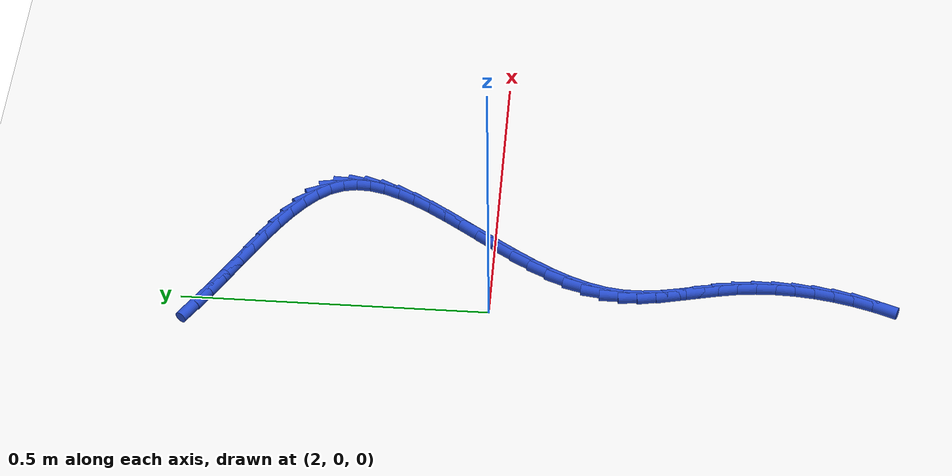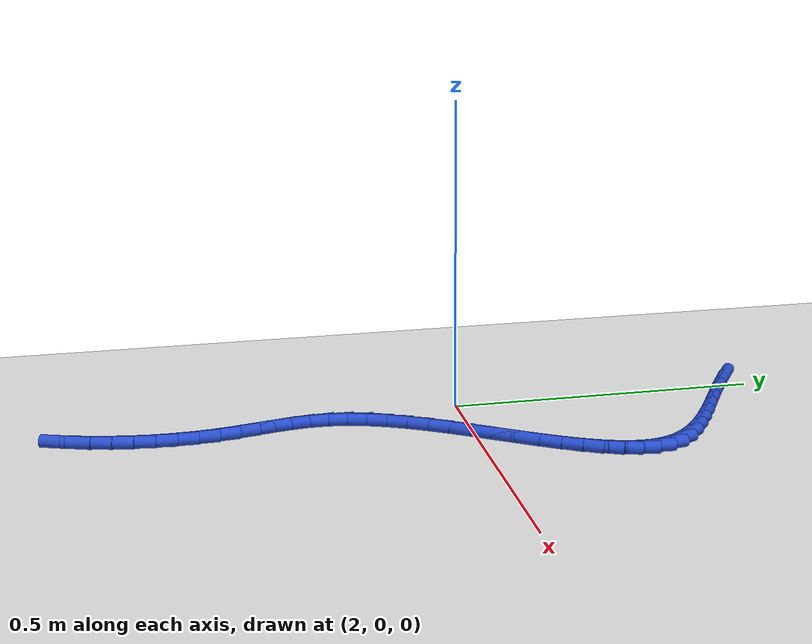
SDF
<sdf version="1.6">
 <world name="default">
  <model name="ground_plane">
   <static>1</static>
   <link name="link">
    <collision name="collision">
     <geometry><plane><normal>0 0 1</normal><size>100 100</size></plane></geometry>
     <surface><friction><ode><mu>100</mu><mu2>50</mu2></ode></friction></surface>
    </collision>
    <visual name="visual">
     <cast_shadows>0</cast_shadows>
     <geometry><plane><normal>0 0 1</normal><size>100 100</size></plane></geometry>
     <material>
      <script><uri>file://media/materials/scripts/gazebo.material</uri><name>Gazebo/WhiteGlow</name></script>
     </material>
    </visual>
   </link>
  </model>
  <model name="line">
   <link name="link_103">
    <pose>1.981913465674642 0.47085074446422454 0.01 0 1.57 -0.5699047802693901</pose>
    <collision name="collision">
     <geometry><cylinder><radius>0.01</radius><length>0.08</length></cylinder></geometry>
    </collision>
    <visual name="visual">
     <material>
      <script><name>Gazebo/Blue</name><uri>file://media/materials/scripts/gazebo.material</uri></script>
     </material>
     <geometry><cylinder><radius>0.01</radius><length>0.08</length></cylinder></geometry>
    </visual>
   </link>
   <link name="link_104">
    <pose>2.010251713594959 0.45269062546092215 0.01 0 1.57 -0.5445728263517903</pose>
    <collision name="collision">
     <geometry><cylinder><radius>0.01</radius><length>0.08</length></cylinder></geometry>
    </collision>
    <visual name="visual">
     <material>
      <script><name>Gazebo/Blue</name><uri>file://media/materials/scripts/gazebo.material</uri></script>
     </material>
     <geometry><cylinder><radius>0.01</radius><length>0.08</length></cylinder></geometry>
    </visual>
   </link>
   <link name="link_105">
    <pose>2.039590934486966 0.434920954676809 0.01 0 1.57 -0.5301406396188105</pose>
    <collision name="collision">
     <geometry><cylinder><radius>0.01</radius><length>0.08</length></cylinder></geometry>
    </collision>
    <visual name="visual">
     <material>
      <script><name>Gazebo/Blue</name><uri>file://media/materials/scripts/gazebo.material</uri></script>
     </material>
     <geometry><cylinder><radius>0.01</radius><length>0.08</length></cylinder></geometry>
    </visual>
   </link>
   <link name="link_106">
    <pose>2.0696098026925442 0.41732671743350236 0.01 0 1.57 -0.5267003974403813</pose>
    <collision name="collision">
     <geometry><cylinder><radius>0.01</radius><length>0.08</length></cylinder></geometry>
    </collision>
    <visual name="visual">
     <material>
      <script><name>Gazebo/Blue</name><uri>file://media/materials/scripts/gazebo.material</uri></script>
     </material>
     <geometry><cylinder><radius>0.01</radius><length>0.08</length></cylinder></geometry>
    </visual>
   </link>
   <link name="link_107">
    <pose>2.0999188131341695 0.3997022340509509 0.01 0 1.57 -0.5377876126190331</pose>
    <collision name="collision">
     <geometry><cylinder><radius>0.01</radius><length>0.08</length></cylinder></geometry>
    </collision>
    <visual name="visual">
     <material>
      <script><name>Gazebo/Blue</name><uri>file://media/materials/scripts/gazebo.material</uri></script>
     </material>
     <geometry><cylinder><radius>0.01</radius><length>0.08</length></cylinder></geometry>
    </visual>
   </link>
   <link name="link_108">
    <pose>2.129785881011208 0.3818887302227648 0.01 0 1.57 -0.5656257648243175</pose>
    <collision name="collision">
     <geometry><cylinder><radius>0.01</radius><length>0.08</length></cylinder></geometry>
    </collision>
    <visual name="visual">
     <material>
      <script><name>Gazebo/Blue</name><uri>file://media/materials/scripts/gazebo.material</uri></script>
     </material>
     <geometry><cylinder><radius>0.01</radius><length>0.08</length></cylinder></geometry>
    </visual>
   </link>
   <link name="link_109">
    <pose>2.1583715553144747 0.3637421320226151 0.01 0 1.57 -0.6132171819817294</pose>
    <collision name="collision">
     <geometry><cylinder><radius>0.01</radius><length>0.08</length></cylinder></geometry>
    </collision>
    <visual name="visual">
     <material>
      <script><name>Gazebo/Blue</name><uri>file://media/materials/scripts/gazebo.material</uri></script>
     </material>
     <geometry><cylinder><radius>0.01</radius><length>0.08</length></cylinder></geometry>
    </visual>
   </link>
   <link name="link_110">
    <pose>2.1848363474656693 0.3451183706680651 0.01 0 1.57 -0.6860888209851176</pose>
    <collision name="collision">
     <geometry><cylinder><radius>0.01</radius><length>0.08</length></cylinder></geometry>
    </collision>
    <visual name="visual">
     <material>
      <script><name>Gazebo/Blue</name><uri>file://media/materials/scripts/gazebo.material</uri></script>
     </material>
     <geometry><cylinder><radius>0.01</radius><length>0.08</length></cylinder></geometry>
    </visual>
   </link>
   <link name="link_111">
    <pose>2.2083407688864938 0.32587337737667826 0.01 0 1.57 -0.7930961859801333</pose>
    <collision name="collision">
     <geometry><cylinder><radius>0.01</radius><length>0.08</length></cylinder></geometry>
    </collision>
    <visual name="visual">
     <material>
      <script><name>Gazebo/Blue</name><uri>file://media/materials/scripts/gazebo.material</uri></script>
     </material>
     <geometry><cylinder><radius>0.01</radius><length>0.08</length></cylinder></geometry>
    </visual>
   </link>
   <link name="link_112">
    <pose>2.22804533099865 0.30586308336601814 0.01 0 1.57 -0.9466770565785255</pose>
    <collision name="collision">
     <geometry><cylinder><radius>0.01</radius><length>0.08</length></cylinder></geometry>
    </collision>
    <visual name="visual">
     <material>
      <script><name>Gazebo/Blue</name><uri>file://media/materials/scripts/gazebo.material</uri></script>
     </material>
     <geometry><cylinder><radius>0.01</radius><length>0.08</length></cylinder></geometry>
    </visual>
   </link>
   <link name="link_113">
    <pose>2.2431105452238382 0.284943419853648 0.01 0 1.57 -1.1587241691534014</pose>
    <collision name="collision">
     <geometry><cylinder><radius>0.01</radius><length>0.08</length></cylinder></geometry>
    </collision>
    <visual name="visual">
     <material>
      <script><name>Gazebo/Blue</name><uri>file://media/materials/scripts/gazebo.material</uri></script>
     </material>
     <geometry><cylinder><radius>0.01</radius><length>0.08</length></cylinder></geometry>
    </visual>
   </link>
   <link name="link_114">
    <pose>2.2527137906373436 0.2629729079486041 0.01 0 1.57 -1.4019546736167359</pose>
    <collision name="collision">
     <geometry><cylinder><radius>0.01</radius><length>0.08</length></cylinder></geometry>
    </collision>
    <visual name="visual">
     <material>
      <script><name>Gazebo/Blue</name><uri>file://media/materials/scripts/gazebo.material</uri></script>
     </material>
     <geometry><cylinder><radius>0.01</radius><length>0.08</length></cylinder></geometry>
    </visual>
   </link>
   <link name="link_115">
    <pose>2.2566461709952774 0.23990430120960435 0.01 0 1.57 1.5221272723762889</pose>
    <collision name="collision">
     <geometry><cylinder><radius>0.01</radius><length>0.08</length></cylinder></geometry>
    </collision>
    <visual name="visual">
     <material>
      <script><name>Gazebo/Blue</name><uri>file://media/materials/scripts/gazebo.material</uri></script>
     </material>
     <geometry><cylinder><radius>0.01</radius><length>0.08</length></cylinder></geometry>
    </visual>
   </link>
   <link name="link_116">
    <pose>2.2554725564112865 0.21580915874715484 0.01 0 1.57 1.3483132950115322</pose>
    <collision name="collision">
     <geometry><cylinder><radius>0.01</radius><length>0.08</length></cylinder></geometry>
    </collision>
    <visual name="visual">
     <material>
      <script><name>Gazebo/Blue</name><uri>file://media/materials/scripts/gazebo.material</uri></script>
     </material>
     <geometry><cylinder><radius>0.01</radius><length>0.08</length></cylinder></geometry>
    </visual>
   </link>
   <link name="link_117">
    <pose>2.2498072327305594 0.19076662705675954 0.01 0 1.57 1.2179190292926807</pose>
    <collision name="collision">
     <geometry><cylinder><radius>0.01</radius><length>0.08</length></cylinder></geometry>
    </collision>
    <visual name="visual">
     <material>
      <script><name>Gazebo/Blue</name><uri>file://media/materials/scripts/gazebo.material</uri></script>
     </material>
     <geometry><cylinder><radius>0.01</radius><length>0.08</length></cylinder></geometry>
    </visual>
   </link>
   <link name="link_118">
    <pose>2.2402644857982863 0.16485585263392236 0.01 0 1.57 1.1235824274150594</pose>
    <collision name="collision">
     <geometry><cylinder><radius>0.01</radius><length>0.08</length></cylinder></geometry>
    </collision>
    <visual name="visual">
     <material>
      <script><name>Gazebo/Blue</name><uri>file://media/materials/scripts/gazebo.material</uri></script>
     </material>
     <geometry><cylinder><radius>0.01</radius><length>0.08</length></cylinder></geometry>
    </visual>
   </link>
   <link name="link_119">
    <pose>2.2274586014596567 0.13815598197414725 0.01 0 1.57 1.0573900036119586</pose>
    <collision name="collision">
     <geometry><cylinder><radius>0.01</radius><length>0.08</length></cylinder></geometry>
    </collision>
    <visual name="visual">
     <material>
      <script><name>Gazebo/Blue</name><uri>file://media/materials/scripts/gazebo.material</uri></script>
     </material>
     <geometry><cylinder><radius>0.01</radius><length>0.08</length></cylinder></geometry>
    </visual>
   </link>
   <link name="link_120">
    <pose>2.2120038655598595 0.11074616157293851 0.01 0 1.57 1.0131230269130178</pose>
    <collision name="collision">
     <geometry><cylinder><radius>0.01</radius><length>0.08</length></cylinder></geometry>
    </collision>
    <visual name="visual">
     <material>
      <script><name>Gazebo/Blue</name><uri>file://media/materials/scripts/gazebo.material</uri></script>
     </material>
     <geometry><cylinder><radius>0.01</radius><length>0.08</length></cylinder></geometry>
    </visual>
   </link>
   <link name="link_121">
    <pose>2.194514563944084 0.08270553792579931 0.01 0 1.57 0.9864816601835548</pose>
    <collision name="collision">
     <geometry><cylinder><radius>0.01</radius><length>0.08</length></cylinder></geometry>
    </collision>
    <visual name="visual">
     <material>
      <script><name>Gazebo/Blue</name><uri>file://media/materials/scripts/gazebo.material</uri></script>
     </material>
     <geometry><cylinder><radius>0.01</radius><length>0.08</length></cylinder></geometry>
    </visual>
   </link>
   <link name="link_122">
    <pose>2.175604982457519 0.05411325752823394 0.01 0 1.57 0.9747611929047348</pose>
    <collision name="collision">
     <geometry><cylinder><radius>0.01</radius><length>0.08</length></cylinder></geometry>
    </collision>
    <visual name="visual">
     <material>
      <script><name>Gazebo/Blue</name><uri>file://media/materials/scripts/gazebo.material</uri></script>
     </material>
     <geometry><cylinder><radius>0.01</radius><length>0.08</length></cylinder></geometry>
    </visual>
   </link>
   <link name="link_123">
    <pose>2.1558894069453545 0.02504846687574635 0.01 0 1.57 0.9765097873525114</pose>
    <collision name="collision">
     <geometry><cylinder><radius>0.01</radius><length>0.08</length></cylinder></geometry>
    </collision>
    <visual name="visual">
     <material>
      <script><name>Gazebo/Blue</name><uri>file://media/materials/scripts/gazebo.material</uri></script>
     </material>
     <geometry><cylinder><radius>0.01</radius><length>0.08</length></cylinder></geometry>
    </visual>
   </link>
   <link name="link_124">
    <pose>2.13598212325278 -0.004409687536159515 0.01 0 1.57 0.9912949978484613</pose>
    <collision name="collision">
     <geometry><cylinder><radius>0.01</radius><length>0.08</length></cylinder></geometry>
    </collision>
    <visual name="visual">
     <material>
      <script><name>Gazebo/Blue</name><uri>file://media/materials/scripts/gazebo.material</uri></script>
     </material>
     <geometry><cylinder><radius>0.01</radius><length>0.08</length></cylinder></geometry>
    </visual>
   </link>
   <link name="link_125">
    <pose>2.1164974172249846 -0.03418205921197976 0.01 0 1.57 1.0195832186732838</pose>
    <collision name="collision">
     <geometry><cylinder><radius>0.01</radius><length>0.08</length></cylinder></geometry>
    </collision>
    <visual name="visual">
     <material>
      <script><name>Gazebo/Blue</name><uri>file://media/materials/scripts/gazebo.material</uri></script>
     </material>
     <geometry><cylinder><radius>0.01</radius><length>0.08</length></cylinder></geometry>
    </visual>
   </link>
   <link name="link_126">
    <pose>2.098049574707156 -0.06418950165621043 0.01 0 1.57 1.0627035868776613</pose>
    <collision name="collision">
     <geometry><cylinder><radius>0.01</radius><length>0.08</length></cylinder></geometry>
    </collision>
    <visual name="visual">
     <material>
      <script><name>Gazebo/Blue</name><uri>file://media/materials/scripts/gazebo.material</uri></script>
     </material>
     <geometry><cylinder><radius>0.01</radius><length>0.08</length></cylinder></geometry>
    </visual>
   </link>
   <link name="link_127">
    <pose>2.0812528815444877 -0.09435286837334765 0.01 0 1.57 1.1228467254052958</pose>
    <collision name="collision">
     <geometry><cylinder><radius>0.01</radius><length>0.08</length></cylinder></geometry>
    </collision>
    <visual name="visual">
     <material>
      <script><name>Gazebo/Blue</name><uri>file://media/materials/scripts/gazebo.material</uri></script>
     </material>
     <geometry><cylinder><radius>0.01</radius><length>0.08</length></cylinder></geometry>
    </visual>
   </link>
   <link name="link_128">
    <pose>2.0667216235821644 -0.1245930128678874 0.01 0 1.57 1.2029996907922589</pose>
    <collision name="collision">
     <geometry><cylinder><radius>0.01</radius><length>0.08</length></cylinder></geometry>
    </collision>
    <visual name="visual">
     <material>
      <script><name>Gazebo/Blue</name><uri>file://media/materials/scripts/gazebo.material</uri></script>
     </material>
     <geometry><cylinder><radius>0.01</radius><length>0.08</length></cylinder></geometry>
    </visual>
   </link>
   <link name="link_129">
    <pose>2.0550700866653777 -0.1548307886443258 0.01 0 1.57 1.3066104427403022</pose>
    <collision name="collision">
     <geometry><cylinder><radius>0.01</radius><length>0.08</length></cylinder></geometry>
    </collision>
    <visual name="visual">
     <material>
      <script><name>Gazebo/Blue</name><uri>file://media/materials/scripts/gazebo.material</uri></script>
     </material>
     <geometry><cylinder><radius>0.01</radius><length>0.08</length></cylinder></geometry>
    </visual>
   </link>
   <link name="link_130">
    <pose>2.0469125566393163 -0.184987049207159 0.01 0 1.57 1.4364834005660203</pose>
    <collision name="collision">
     <geometry><cylinder><radius>0.01</radius><length>0.08</length></cylinder></geometry>
    </collision>
    <visual name="visual">
     <material>
      <script><name>Gazebo/Blue</name><uri>file://media/materials/scripts/gazebo.material</uri></script>
     </material>
     <geometry><cylinder><radius>0.01</radius><length>0.08</length></cylinder></geometry>
    </visual>
   </link>
   <link name="link_131">
    <pose>2.0428592908488787 -0.21498314081734582 0.01 0 1.57 -1.5662880877214558</pose>
    <collision name="collision">
     <geometry><cylinder><radius>0.01</radius><length>0.08</length></cylinder></geometry>
    </collision>
    <visual name="visual">
     <material>
      <script><name>Gazebo/Blue</name><uri>file://media/materials/scripts/gazebo.material</uri></script>
     </material>
     <geometry><cylinder><radius>0.01</radius><length>0.08</length></cylinder></geometry>
    </visual>
   </link>
   <link name="link_132">
    <pose>2.042993735145489 -0.2448048480502026 0.01 0 1.57 -1.458353848641291</pose>
    <collision name="collision">
     <geometry><cylinder><radius>0.01</radius><length>0.08</length></cylinder></geometry>
    </collision>
    <visual name="visual">
     <material>
      <script><name>Gazebo/Blue</name><uri>file://media/materials/scripts/gazebo.material</uri></script>
     </material>
     <geometry><cylinder><radius>0.01</radius><length>0.08</length></cylinder></geometry>
    </visual>
   </link>
   <link name="link_133">
    <pose>2.0463543030880196 -0.27456578131669085 0.01 0 1.57 -1.3883965175967687</pose>
    <collision name="collision">
     <geometry><cylinder><radius>0.01</radius><length>0.08</length></cylinder></geometry>
    </collision>
    <visual name="visual">
     <material>
      <script><name>Gazebo/Blue</name><uri>file://media/materials/scripts/gazebo.material</uri></script>
     </material>
     <geometry><cylinder><radius>0.01</radius><length>0.08</length></cylinder></geometry>
    </visual>
   </link>
   <link name="link_134">
    <pose>2.0518562287656588 -0.30439461804413015 0.01 0 1.57 -1.3557419510926974</pose>
    <collision name="collision">
     <geometry><cylinder><radius>0.01</radius><length>0.08</length></cylinder></geometry>
    </collision>
    <visual name="visual">
     <material>
      <script><name>Gazebo/Blue</name><uri>file://media/materials/scripts/gazebo.material</uri></script>
     </material>
     <geometry><cylinder><radius>0.01</radius><length>0.08</length></cylinder></geometry>
    </visual>
   </link>
   <link name="link_135">
    <pose>2.058414746267597 -0.33442003565984 0.01 0 1.57 -1.358864344481079</pose>
    <collision name="collision">
     <geometry><cylinder><radius>0.01</radius><length>0.08</length></cylinder></geometry>
    </collision>
    <visual name="visual">
     <material>
      <script><name>Gazebo/Blue</name><uri>file://media/materials/scripts/gazebo.material</uri></script>
     </material>
     <geometry><cylinder><radius>0.01</radius><length>0.08</length></cylinder></geometry>
    </visual>
   </link>
   <link name="link_136">
    <pose>2.0649450896830235 -0.3647707115911403 0.01 0 1.57 -1.3967130495350932</pose>
    <collision name="collision">
     <geometry><cylinder><radius>0.01</radius><length>0.08</length></cylinder></geometry>
    </collision>
    <visual name="visual">
     <material>
      <script><name>Gazebo/Blue</name><uri>file://media/materials/scripts/gazebo.material</uri></script>
     </material>
     <geometry><cylinder><radius>0.01</radius><length>0.08</length></cylinder></geometry>
    </visual>
   </link>
   <link name="link_137">
    <pose>2.0703624931011264 -0.39557532326535033 0.01 0 1.57 -1.464203298205763</pose>
    <collision name="collision">
     <geometry><cylinder><radius>0.01</radius><length>0.08</length></cylinder></geometry>
    </collision>
    <visual name="visual">
     <material>
      <script><name>Gazebo/Blue</name><uri>file://media/materials/scripts/gazebo.material</uri></script>
     </material>
     <geometry><cylinder><radius>0.01</radius><length>0.08</length></cylinder></geometry>
    </visual>
   </link>
   <link name="link_138">
    <pose>2.073716851828532 -0.42692488693848996 0.01 0 1.57 -1.5361477664304273</pose>
    <collision name="collision">
     <geometry><cylinder><radius>0.01</radius><length>0.08</length></cylinder></geometry>
    </collision>
    <visual name="visual">
     <material>
      <script><name>Gazebo/Blue</name><uri>file://media/materials/scripts/gazebo.material</uri></script>
     </material>
     <geometry><cylinder><radius>0.01</radius><length>0.08</length></cylinder></geometry>
    </visual>
   </link>
   <link name="link_139">
    <pose>2.0748181794589025 -0.4586978339400402 0.01 0 1.57 1.5372078605252866</pose>
    <collision name="collision">
     <geometry><cylinder><radius>0.01</radius><length>0.08</length></cylinder></geometry>
    </collision>
    <visual name="visual">
     <material>
      <script><name>Gazebo/Blue</name><uri>file://media/materials/scripts/gazebo.material</uri></script>
     </material>
     <geometry><cylinder><radius>0.01</radius><length>0.08</length></cylinder></geometry>
    </visual>
   </link>
   <link name="link_140">
    <pose>2.0737429359653636 -0.4906980776133069 0.01 0 1.57 1.4719953753841675</pose>
    <collision name="collision">
     <geometry><cylinder><radius>0.01</radius><length>0.08</length></cylinder></geometry>
    </collision>
    <visual name="visual">
     <material>
      <script><name>Gazebo/Blue</name><uri>file://media/materials/scripts/gazebo.material</uri></script>
     </material>
     <geometry><cylinder><radius>0.01</radius><length>0.08</length></cylinder></geometry>
    </visual>
   </link>
   <link name="link_141">
    <pose>2.07056786777336 -0.522729451188479 0.01 0 1.57 1.4090970814213535</pose>
    <collision name="collision">
     <geometry><cylinder><radius>0.01</radius><length>0.08</length></cylinder></geometry>
    </collision>
    <visual name="visual">
     <material>
      <script><name>Gazebo/Blue</name><uri>file://media/materials/scripts/gazebo.material</uri></script>
     </material>
     <geometry><cylinder><radius>0.01</radius><length>0.08</length></cylinder></geometry>
    </visual>
   </link>
   <link name="link_142">
    <pose>2.0653697213083357 -0.5545957878957462 0.01 0 1.57 1.347796023159601</pose>
    <collision name="collision">
     <geometry><cylinder><radius>0.01</radius><length>0.08</length></cylinder></geometry>
    </collision>
    <visual name="visual">
     <material>
      <script><name>Gazebo/Blue</name><uri>file://media/materials/scripts/gazebo.material</uri></script>
     </material>
     <geometry><cylinder><radius>0.01</radius><length>0.08</length></cylinder></geometry>
    </visual>
   </link>
   <link name="link_143">
    <pose>2.058225242995735 -0.5861009209652974 0.01 0 1.57 1.287370537895317</pose>
    <collision name="collision">
     <geometry><cylinder><radius>0.01</radius><length>0.08</length></cylinder></geometry>
    </collision>
    <visual name="visual">
     <material>
      <script><name>Gazebo/Blue</name><uri>file://media/materials/scripts/gazebo.material</uri></script>
     </material>
     <geometry><cylinder><radius>0.01</radius><length>0.08</length></cylinder></geometry>
    </visual>
   </link>
   <link name="link_144">
    <pose>2.049211179261001 -0.6170486836273221 0.01 0 1.57 1.2270896212775317</pose>
    <collision name="collision">
     <geometry><cylinder><radius>0.01</radius><length>0.08</length></cylinder></geometry>
    </collision>
    <visual name="visual">
     <material>
      <script><name>Gazebo/Blue</name><uri>file://media/materials/scripts/gazebo.material</uri></script>
     </material>
     <geometry><cylinder><radius>0.01</radius><length>0.08</length></cylinder></geometry>
    </visual>
   </link>
  </model>
 </world>
</sdf>
